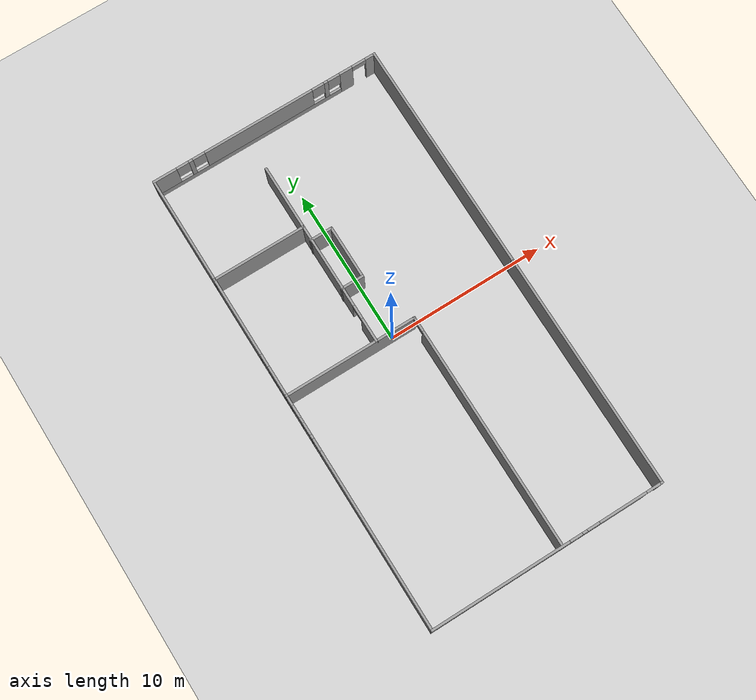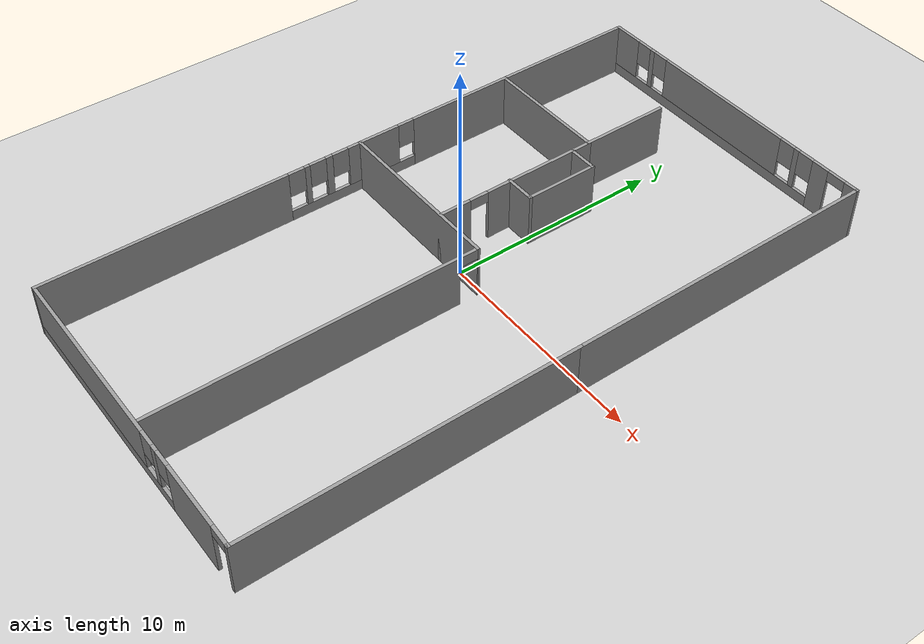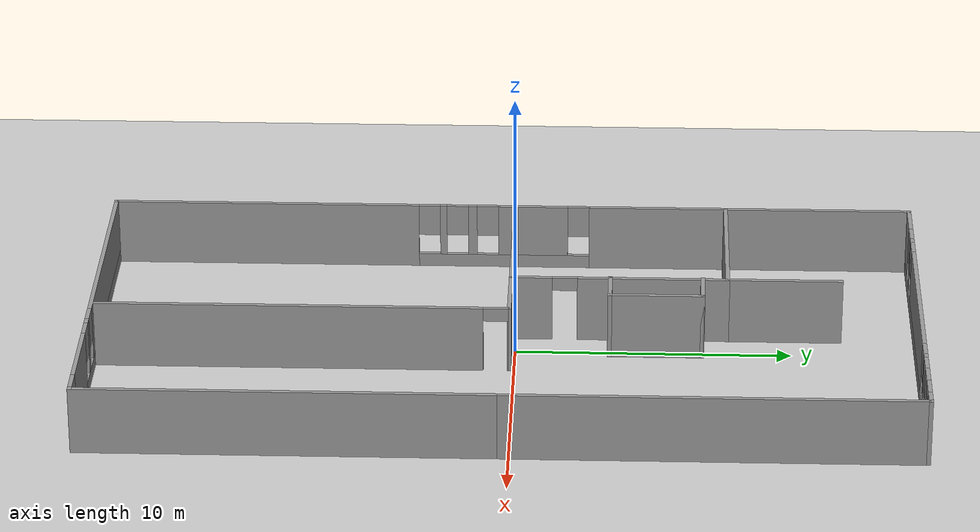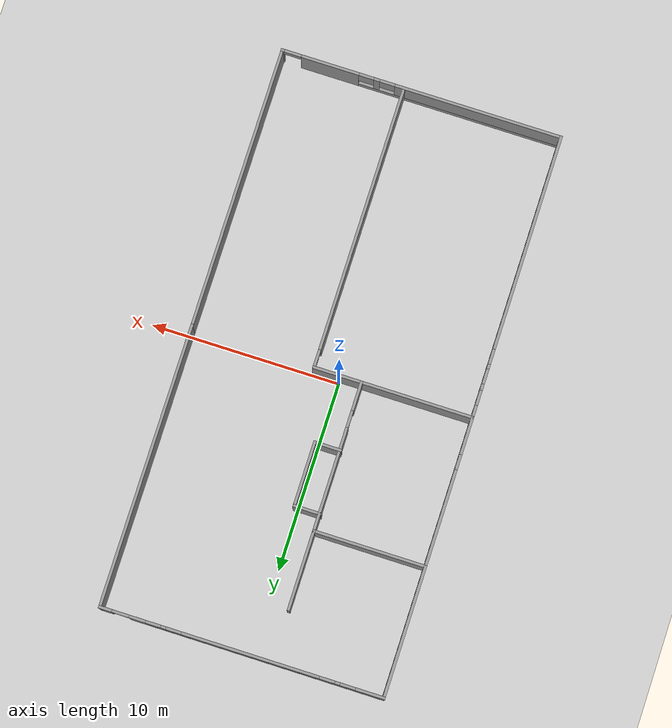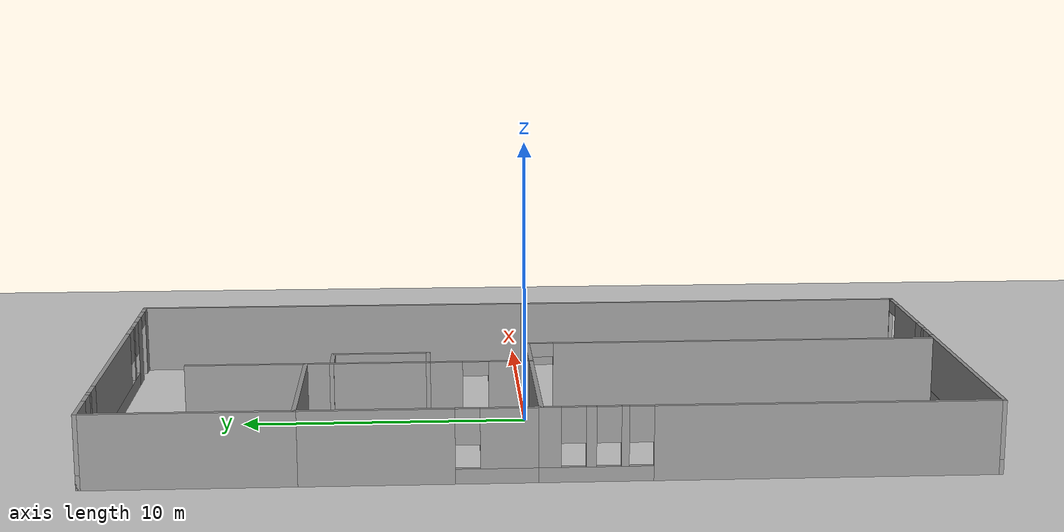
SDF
<sdf version="1.6">
 <world name="default">
  <light name="sun" type="directional">
   <pose>0 0 10 0 -0 0</pose>
   <diffuse>0.8 0.8 0.8 1</diffuse>
   <specular>0.2 0.2 0.2 1</specular>
   <attenuation>
    <range>1000</range>
    <constant>0.9</constant>
    <linear>0.01</linear>
    <quadratic>0.001</quadratic>
   </attenuation>
   <direction>-0.5 0.1 -0.9</direction>
  </light>
  <model name="ground_plane">
   <static>1</static>
   <link name="link">
    <collision name="collision">
     <geometry><plane><normal>0 0 1</normal><size>100 100</size></plane></geometry>
     <surface><friction><ode><mu>100</mu><mu2>50</mu2></ode></friction></surface>
    </collision>
    <visual name="visual">
     <cast_shadows>0</cast_shadows>
     <geometry><plane><normal>0 0 1</normal><size>100 100</size></plane></geometry>
     <material>
      <script><uri>file://media/materials/scripts/gazebo.material</uri><name>Gazebo/Grey</name></script>
     </material>
    </visual>
   </link>
  </model>
  <gravity>0 0 -9.8</gravity>
  <magnetic_field>6e-06 2.3e-05 -4.2e-05</magnetic_field>
  <atmosphere type="adiabatic"/>
  <physics name="default_physics" default="0" type="ode">
   <max_step_size>0.001</max_step_size>
   <real_time_factor>1</real_time_factor>
   <real_time_update_rate>1000</real_time_update_rate>
  </physics>
  <scene><ambient>0.4 0.4 0.4 1</ambient><background>0.7 0.7 0.7 1</background><shadows>1</shadows></scene>
  <spherical_coordinates>
   <surface_model>EARTH_WGS84</surface_model>
   <latitude_deg>0</latitude_deg>
   <longitude_deg>0</longitude_deg>
   <elevation>0</elevation>
   <heading_deg>0</heading_deg>
  </spherical_coordinates>
  <model name="myworld">
   <pose>0.44447 -0.32036 0 0 -0 0</pose>
   <link name="Wall_12">
    <collision name="Wall_12_Collision">
     <geometry><box><size>15 0.15 2.5</size></box></geometry>
     <pose>0 0 1.25 0 -0 0</pose>
    </collision>
    <visual name="Wall_12_Visual">
     <pose>0 0 1.25 0 -0 0</pose>
     <geometry><box><size>15 0.15 2.5</size></box></geometry>
     <material>
      <script><uri>file://media/materials/scripts/gazebo.material</uri><name>Gazebo/Grey</name></script>
      <ambient>1 1 1 1</ambient>
     </material>
     <meta><layer>0</layer></meta>
    </visual>
    <pose>7.425 7.425 0 0 -0 1.5708</pose>
   </link>
   <link name="Wall_14">
    <pose>0 14.85 0 0 -0 3.14159</pose>
    <visual name="Wall_14_Visual_0">
     <pose>-7.1452 0 1.25 0 -0 0</pose>
     <geometry><box><size>0.709594 0.15 2.5</size></box></geometry>
     <material>
      <script><uri>file://media/materials/scripts/gazebo.material</uri><name>Gazebo/Grey</name></script>
      <ambient>1 1 1 1</ambient>
     </material>
     <meta><layer>0</layer></meta>
    </visual>
    <collision name="Wall_14_Collision_0">
     <geometry><box><size>0.709594 0.15 2.5</size></box></geometry>
     <pose>-7.1452 0 1.25 0 -0 0</pose>
    </collision>
    <visual name="Wall_14_Visual_1">
     <pose>-5.45937 0 1.25 0 -0 0</pose>
     <geometry><box><size>0.86208 0.15 2.5</size></box></geometry>
     <material>
      <script><uri>file://media/materials/scripts/gazebo.material</uri><name>Gazebo/Grey</name></script>
      <ambient>1 1 1 1</ambient>
     </material>
     <meta><layer>0</layer></meta>
    </visual>
    <collision name="Wall_14_Collision_1">
     <geometry><box><size>0.86208 0.15 2.5</size></box></geometry>
     <pose>-5.45937 0 1.25 0 -0 0</pose>
    </collision>
    <visual name="Wall_14_Visual_2">
     <pose>1.23584 0 0.25 0 -0 0</pose>
     <geometry><box><size>12.5283 0.15 0.5</size></box></geometry>
     <material>
      <script><uri>file://media/materials/scripts/gazebo.material</uri><name>Gazebo/Grey</name></script>
      <ambient>1 1 1 1</ambient>
     </material>
     <meta><layer>0</layer></meta>
    </visual>
    <collision name="Wall_14_Collision_2">
     <geometry><box><size>12.5283 0.15 0.5</size></box></geometry>
     <pose>1.23584 0 0.25 0 -0 0</pose>
    </collision>
    <visual name="Wall_14_Visual_3">
     <pose>-4.0933 0 1.5 0 -0 0</pose>
     <geometry><box><size>0.27005 0.15 2</size></box></geometry>
     <material>
      <script><uri>file://media/materials/scripts/gazebo.material</uri><name>Gazebo/Grey</name></script>
      <ambient>1 1 1 1</ambient>
     </material>
     <meta><layer>0</layer></meta>
    </visual>
    <collision name="Wall_14_Collision_3">
     <geometry><box><size>0.27005 0.15 2</size></box></geometry>
     <pose>-4.0933 0 1.5 0 -0 0</pose>
    </collision>
    <visual name="Wall_14_Visual_4">
     <pose>0.454412 0 1.5 0 -0 0</pose>
     <geometry><box><size>7.22537 0.15 2</size></box></geometry>
     <material>
      <script><uri>file://media/materials/scripts/gazebo.material</uri><name>Gazebo/Grey</name></script>
      <ambient>1 1 1 1</ambient>
     </material>
     <meta><layer>0</layer></meta>
    </visual>
    <collision name="Wall_14_Collision_4">
     <geometry><box><size>7.22537 0.15 2</size></box></geometry>
     <pose>0.454412 0 1.5 0 -0 0</pose>
    </collision>
    <visual name="Wall_14_Visual_5">
     <pose>5.00212 0 1.5 0 -0 0</pose>
     <geometry><box><size>0.27005 0.15 2</size></box></geometry>
     <material>
      <script><uri>file://media/materials/scripts/gazebo.material</uri><name>Gazebo/Grey</name></script>
      <ambient>1 1 1 1</ambient>
     </material>
     <meta><layer>0</layer></meta>
    </visual>
    <collision name="Wall_14_Collision_5">
     <geometry><box><size>0.27005 0.15 2</size></box></geometry>
     <pose>5.00212 0 1.5 0 -0 0</pose>
    </collision>
    <visual name="Wall_14_Visual_6">
     <pose>6.71858 0 1.5 0 -0 0</pose>
     <geometry><box><size>1.56285 0.15 2</size></box></geometry>
     <material>
      <script><uri>file://media/materials/scripts/gazebo.material</uri><name>Gazebo/Grey</name></script>
      <ambient>1 1 1 1</ambient>
     </material>
     <meta><layer>0</layer></meta>
    </visual>
    <collision name="Wall_14_Collision_6">
     <geometry><box><size>1.56285 0.15 2</size></box></geometry>
     <pose>6.71858 0 1.5 0 -0 0</pose>
    </collision>
    <visual name="Wall_14_Visual_7">
     <pose>-4.62833 0 1.9 0 -0 0</pose>
     <geometry><box><size>0.8 0.15 1.2</size></box></geometry>
     <material>
      <script><uri>file://media/materials/scripts/gazebo.material</uri><name>Gazebo/Grey</name></script>
      <ambient>1 1 1 1</ambient>
     </material>
     <meta><layer>0</layer></meta>
    </visual>
    <collision name="Wall_14_Collision_7">
     <geometry><box><size>0.8 0.15 1.2</size></box></geometry>
     <pose>-4.62833 0 1.9 0 -0 0</pose>
    </collision>
    <visual name="Wall_14_Visual_8">
     <pose>-3.55828 0 1.9 0 -0 0</pose>
     <geometry><box><size>0.8 0.15 1.2</size></box></geometry>
     <material>
      <script><uri>file://media/materials/scripts/gazebo.material</uri><name>Gazebo/Grey</name></script>
      <ambient>1 1 1 1</ambient>
     </material>
     <meta><layer>0</layer></meta>
    </visual>
    <collision name="Wall_14_Collision_8">
     <geometry><box><size>0.8 0.15 1.2</size></box></geometry>
     <pose>-3.55828 0 1.9 0 -0 0</pose>
    </collision>
    <visual name="Wall_14_Visual_9">
     <pose>4.4671 0 1.9 0 -0 0</pose>
     <geometry><box><size>0.8 0.15 1.2</size></box></geometry>
     <material>
      <script><uri>file://media/materials/scripts/gazebo.material</uri><name>Gazebo/Grey</name></script>
      <ambient>1 1 1 1</ambient>
     </material>
     <meta><layer>0</layer></meta>
    </visual>
    <collision name="Wall_14_Collision_9">
     <geometry><box><size>0.8 0.15 1.2</size></box></geometry>
     <pose>4.4671 0 1.9 0 -0 0</pose>
    </collision>
    <visual name="Wall_14_Visual_10">
     <pose>5.53715 0 1.9 0 -0 0</pose>
     <geometry><box><size>0.8 0.15 1.2</size></box></geometry>
     <material>
      <script><uri>file://media/materials/scripts/gazebo.material</uri><name>Gazebo/Grey</name></script>
      <ambient>1 1 1 1</ambient>
     </material>
     <meta><layer>0</layer></meta>
    </visual>
    <collision name="Wall_14_Collision_10">
     <geometry><box><size>0.8 0.15 1.2</size></box></geometry>
     <pose>5.53715 0 1.9 0 -0 0</pose>
    </collision>
    <visual name="Wall_14_Visual_11">
     <pose>-6.34041 0 2.25 0 -0 0</pose>
     <geometry><box><size>0.9 0.15 0.5</size></box></geometry>
     <material>
      <script><uri>file://media/materials/scripts/gazebo.material</uri><name>Gazebo/Grey</name></script>
      <ambient>1 1 1 1</ambient>
     </material>
     <meta><layer>0</layer></meta>
    </visual>
    <collision name="Wall_14_Collision_11">
     <geometry><box><size>0.9 0.15 0.5</size></box></geometry>
     <pose>-6.34041 0 2.25 0 -0 0</pose>
    </collision>
   </link>
   <link name="Wall_16">
    <collision name="Wall_16_Collision">
     <geometry><box><size>7 0.15 2.5</size></box></geometry>
     <pose>0 0 1.25 0 -0 0</pose>
    </collision>
    <visual name="Wall_16_Visual">
     <pose>0 0 1.25 0 -0 0</pose>
     <geometry><box><size>7 0.15 2.5</size></box></geometry>
     <material>
      <script><uri>file://media/materials/scripts/gazebo.material</uri><name>Gazebo/Grey</name></script>
      <ambient>1 1 1 1</ambient>
     </material>
     <meta><layer>0</layer></meta>
    </visual>
    <pose>-7.425 11.425 0 0 0 -1.5708</pose>
   </link>
   <link name="Wall_18">
    <collision name="Wall_18_Collision">
     <geometry><box><size>6 0.15 2.5</size></box></geometry>
     <pose>0 0 1.25 0 -0 0</pose>
    </collision>
    <visual name="Wall_18_Visual">
     <pose>0 0 1.25 0 -0 0</pose>
     <geometry><box><size>6 0.15 2.5</size></box></geometry>
     <material>
      <script><uri>file://media/materials/scripts/gazebo.material</uri><name>Gazebo/Grey</name></script>
      <ambient>1 1 1 1</ambient>
     </material>
     <meta><layer>0</layer></meta>
    </visual>
    <pose>-4.5 8 0 0 -0 0</pose>
   </link>
   <link name="Wall_21">
    <collision name="Wall_21_Collision">
     <geometry><box><size>4.25 0.15 2.5</size></box></geometry>
     <pose>0 0 1.25 0 -0 0</pose>
    </collision>
    <visual name="Wall_21_Visual">
     <pose>0 0 1.25 0 -0 0</pose>
     <geometry><box><size>4.25 0.15 2.5</size></box></geometry>
     <material>
      <script><uri>file://media/materials/scripts/gazebo.material</uri><name>Gazebo/Grey</name></script>
      <ambient>1 1 1 1</ambient>
     </material>
     <meta><layer>0</layer></meta>
    </visual>
    <pose>-1.575 10.05 0 0 -0 1.5708</pose>
   </link>
   <link name="Wall_23">
    <pose>-7.425 4.075 0 0 0 -1.5708</pose>
    <visual name="Wall_23_Visual_0">
     <pose>-1.41347 0 1.25 0 -0 0</pose>
     <geometry><box><size>5.17307 0.15 2.5</size></box></geometry>
     <material>
      <script><uri>file://media/materials/scripts/gazebo.material</uri><name>Gazebo/Grey</name></script>
      <ambient>1 1 1 1</ambient>
     </material>
     <meta><layer>0</layer></meta>
    </visual>
    <collision name="Wall_23_Collision_0">
     <geometry><box><size>5.17307 0.15 2.5</size></box></geometry>
     <pose>-1.41347 0 1.25 0 -0 0</pose>
    </collision>
    <visual name="Wall_23_Visual_1">
     <pose>2.58653 0 0.25 0 -0 0</pose>
     <geometry><box><size>2.82693 0.15 0.5</size></box></geometry>
     <material>
      <script><uri>file://media/materials/scripts/gazebo.material</uri><name>Gazebo/Grey</name></script>
      <ambient>1 1 1 1</ambient>
     </material>
     <meta><layer>0</layer></meta>
    </visual>
    <collision name="Wall_23_Collision_1">
     <geometry><box><size>2.82693 0.15 0.5</size></box></geometry>
     <pose>2.58653 0 0.25 0 -0 0</pose>
    </collision>
    <visual name="Wall_23_Visual_2">
     <pose>2.98653 0 1.5 0 -0 0</pose>
     <geometry><box><size>2.02693 0.15 2</size></box></geometry>
     <material>
      <script><uri>file://media/materials/scripts/gazebo.material</uri><name>Gazebo/Grey</name></script>
      <ambient>1 1 1 1</ambient>
     </material>
     <meta><layer>0</layer></meta>
    </visual>
    <collision name="Wall_23_Collision_2">
     <geometry><box><size>2.02693 0.15 2</size></box></geometry>
     <pose>2.98653 0 1.5 0 -0 0</pose>
    </collision>
    <visual name="Wall_23_Visual_3">
     <pose>1.57307 0 1.9 0 -0 0</pose>
     <geometry><box><size>0.8 0.15 1.2</size></box></geometry>
     <material>
      <script><uri>file://media/materials/scripts/gazebo.material</uri><name>Gazebo/Grey</name></script>
      <ambient>1 1 1 1</ambient>
     </material>
     <meta><layer>0</layer></meta>
    </visual>
    <collision name="Wall_23_Collision_3">
     <geometry><box><size>0.8 0.15 1.2</size></box></geometry>
     <pose>1.57307 0 1.9 0 -0 0</pose>
    </collision>
   </link>
   <link name="Wall_25">
    <collision name="Wall_25_Collision">
     <geometry><box><size>8.5 0.15 2.5</size></box></geometry>
     <pose>0 0 1.25 0 -0 0</pose>
    </collision>
    <visual name="Wall_25_Visual">
     <pose>0 0 1.25 0 -0 0</pose>
     <geometry><box><size>8.5 0.15 2.5</size></box></geometry>
     <material>
      <script><uri>file://media/materials/scripts/gazebo.material</uri><name>Gazebo/Grey</name></script>
      <ambient>1 1 1 1</ambient>
     </material>
     <meta><layer>0</layer></meta>
    </visual>
    <pose>-3.25 0.15 0 0 -0 0</pose>
   </link>
   <link name="Wall_28">
    <pose>0 -14.85 0 0 -0 3.14159</pose>
    <visual name="Wall_28_Visual_0">
     <pose>-7.40397 0 1.25 0 -0 0</pose>
     <geometry><box><size>0.192056 0.15 2.5</size></box></geometry>
     <material>
      <script><uri>file://media/materials/scripts/gazebo.material</uri><name>Gazebo/Grey</name></script>
      <ambient>1 1 1 1</ambient>
     </material>
     <meta><layer>0</layer></meta>
    </visual>
    <collision name="Wall_28_Collision_0">
     <geometry><box><size>0.192056 0.15 2.5</size></box></geometry>
     <pose>-7.40397 0 1.25 0 -0 0</pose>
    </collision>
    <visual name="Wall_28_Visual_1">
     <pose>-4.86453 0 1.25 0 -0 0</pose>
     <geometry><box><size>3.08683 0.15 2.5</size></box></geometry>
     <material>
      <script><uri>file://media/materials/scripts/gazebo.material</uri><name>Gazebo/Grey</name></script>
      <ambient>1 1 1 1</ambient>
     </material>
     <meta><layer>0</layer></meta>
    </visual>
    <collision name="Wall_28_Collision_1">
     <geometry><box><size>3.08683 0.15 2.5</size></box></geometry>
     <pose>-4.86453 0 1.25 0 -0 0</pose>
    </collision>
    <visual name="Wall_28_Visual_2">
     <pose>2.08944 0 0.25 0 -0 0</pose>
     <geometry><box><size>10.8211 0.15 0.5</size></box></geometry>
     <material>
      <script><uri>file://media/materials/scripts/gazebo.material</uri><name>Gazebo/Grey</name></script>
      <ambient>1 1 1 1</ambient>
     </material>
     <meta><layer>0</layer></meta>
    </visual>
    <collision name="Wall_28_Collision_2">
     <geometry><box><size>10.8211 0.15 0.5</size></box></geometry>
     <pose>2.08944 0 0.25 0 -0 0</pose>
    </collision>
    <visual name="Wall_28_Visual_3">
     <pose>-2.36251 0 1.5 0 -0 0</pose>
     <geometry><box><size>0.317208 0.15 2</size></box></geometry>
     <material>
      <script><uri>file://media/materials/scripts/gazebo.material</uri><name>Gazebo/Grey</name></script>
      <ambient>1 1 1 1</ambient>
     </material>
     <meta><layer>0</layer></meta>
    </visual>
    <collision name="Wall_28_Collision_3">
     <geometry><box><size>0.317208 0.15 2</size></box></geometry>
     <pose>-2.36251 0 1.5 0 -0 0</pose>
    </collision>
    <visual name="Wall_28_Visual_4">
     <pose>3.04805 0 1.5 0 -0 0</pose>
     <geometry><box><size>8.90391 0.15 2</size></box></geometry>
     <material>
      <script><uri>file://media/materials/scripts/gazebo.material</uri><name>Gazebo/Grey</name></script>
      <ambient>1 1 1 1</ambient>
     </material>
     <meta><layer>0</layer></meta>
    </visual>
    <collision name="Wall_28_Collision_4">
     <geometry><box><size>8.90391 0.15 2</size></box></geometry>
     <pose>3.04805 0 1.5 0 -0 0</pose>
    </collision>
    <visual name="Wall_28_Visual_5">
     <pose>-2.92111 0 1.9 0 -0 0</pose>
     <geometry><box><size>0.8 0.15 1.2</size></box></geometry>
     <material>
      <script><uri>file://media/materials/scripts/gazebo.material</uri><name>Gazebo/Grey</name></script>
      <ambient>1 1 1 1</ambient>
     </material>
     <meta><layer>0</layer></meta>
    </visual>
    <collision name="Wall_28_Collision_5">
     <geometry><box><size>0.8 0.15 1.2</size></box></geometry>
     <pose>-2.92111 0 1.9 0 -0 0</pose>
    </collision>
    <visual name="Wall_28_Visual_6">
     <pose>-1.80391 0 1.9 0 -0 0</pose>
     <geometry><box><size>0.8 0.15 1.2</size></box></geometry>
     <material>
      <script><uri>file://media/materials/scripts/gazebo.material</uri><name>Gazebo/Grey</name></script>
      <ambient>1 1 1 1</ambient>
     </material>
     <meta><layer>0</layer></meta>
    </visual>
    <collision name="Wall_28_Collision_6">
     <geometry><box><size>0.8 0.15 1.2</size></box></geometry>
     <pose>-1.80391 0 1.9 0 -0 0</pose>
    </collision>
    <visual name="Wall_28_Visual_7">
     <pose>-6.85794 0 2.25 0 -0 0</pose>
     <geometry><box><size>0.9 0.15 0.5</size></box></geometry>
     <material>
      <script><uri>file://media/materials/scripts/gazebo.material</uri><name>Gazebo/Grey</name></script>
      <ambient>1 1 1 1</ambient>
     </material>
     <meta><layer>0</layer></meta>
    </visual>
    <collision name="Wall_28_Collision_7">
     <geometry><box><size>0.9 0.15 0.5</size></box></geometry>
     <pose>-6.85794 0 2.25 0 -0 0</pose>
    </collision>
   </link>
   <link name="Wall_30">
    <pose>-7.425 -7.35 0 0 -0 1.5708</pose>
    <visual name="Wall_30_Visual_0">
     <pose>-1.85297 0 1.25 0 -0 0</pose>
     <geometry><box><size>11.4441 0.15 2.5</size></box></geometry>
     <material>
      <script><uri>file://media/materials/scripts/gazebo.material</uri><name>Gazebo/Grey</name></script>
      <ambient>1 1 1 1</ambient>
     </material>
     <meta><layer>0</layer></meta>
    </visual>
    <collision name="Wall_30_Collision_0">
     <geometry><box><size>11.4441 0.15 2.5</size></box></geometry>
     <pose>-1.85297 0 1.25 0 -0 0</pose>
    </collision>
    <visual name="Wall_30_Visual_1">
     <pose>5.72203 0 0.25 0 -0 0</pose>
     <geometry><box><size>3.70594 0.15 0.5</size></box></geometry>
     <material>
      <script><uri>file://media/materials/scripts/gazebo.material</uri><name>Gazebo/Grey</name></script>
      <ambient>1 1 1 1</ambient>
     </material>
     <meta><layer>0</layer></meta>
    </visual>
    <collision name="Wall_30_Collision_1">
     <geometry><box><size>3.70594 0.15 0.5</size></box></geometry>
     <pose>5.72203 0 0.25 0 -0 0</pose>
    </collision>
    <visual name="Wall_30_Visual_2">
     <pose>4.79499 0 1.5 0 -0 0</pose>
     <geometry><box><size>0.251845 0.15 2</size></box></geometry>
     <material>
      <script><uri>file://media/materials/scripts/gazebo.material</uri><name>Gazebo/Grey</name></script>
      <ambient>1 1 1 1</ambient>
     </material>
     <meta><layer>0</layer></meta>
    </visual>
    <collision name="Wall_30_Collision_2">
     <geometry><box><size>0.251845 0.15 2</size></box></geometry>
     <pose>4.79499 0 1.5 0 -0 0</pose>
    </collision>
    <visual name="Wall_30_Visual_3">
     <pose>5.88729 0 1.5 0 -0 0</pose>
     <geometry><box><size>0.332756 0.15 2</size></box></geometry>
     <material>
      <script><uri>file://media/materials/scripts/gazebo.material</uri><name>Gazebo/Grey</name></script>
      <ambient>1 1 1 1</ambient>
     </material>
     <meta><layer>0</layer></meta>
    </visual>
    <collision name="Wall_30_Collision_3">
     <geometry><box><size>0.332756 0.15 2</size></box></geometry>
     <pose>5.88729 0 1.5 0 -0 0</pose>
    </collision>
    <visual name="Wall_30_Visual_4">
     <pose>7.21433 0 1.5 0 -0 0</pose>
     <geometry><box><size>0.721335 0.15 2</size></box></geometry>
     <material>
      <script><uri>file://media/materials/scripts/gazebo.material</uri><name>Gazebo/Grey</name></script>
      <ambient>1 1 1 1</ambient>
     </material>
     <meta><layer>0</layer></meta>
    </visual>
    <collision name="Wall_30_Collision_4">
     <geometry><box><size>0.721335 0.15 2</size></box></geometry>
     <pose>7.21433 0 1.5 0 -0 0</pose>
    </collision>
    <visual name="Wall_30_Visual_5">
     <pose>4.26906 0 1.9 0 -0 0</pose>
     <geometry><box><size>0.8 0.15 1.2</size></box></geometry>
     <material>
      <script><uri>file://media/materials/scripts/gazebo.material</uri><name>Gazebo/Grey</name></script>
      <ambient>1 1 1 1</ambient>
     </material>
     <meta><layer>0</layer></meta>
    </visual>
    <collision name="Wall_30_Collision_5">
     <geometry><box><size>0.8 0.15 1.2</size></box></geometry>
     <pose>4.26906 0 1.9 0 -0 0</pose>
    </collision>
    <visual name="Wall_30_Visual_6">
     <pose>5.32091 0 1.9 0 -0 0</pose>
     <geometry><box><size>0.8 0.15 1.2</size></box></geometry>
     <material>
      <script><uri>file://media/materials/scripts/gazebo.material</uri><name>Gazebo/Grey</name></script>
      <ambient>1 1 1 1</ambient>
     </material>
     <meta><layer>0</layer></meta>
    </visual>
    <collision name="Wall_30_Collision_6">
     <geometry><box><size>0.8 0.15 1.2</size></box></geometry>
     <pose>5.32091 0 1.9 0 -0 0</pose>
    </collision>
    <visual name="Wall_30_Visual_7">
     <pose>6.45366 0 1.9 0 -0 0</pose>
     <geometry><box><size>0.8 0.15 1.2</size></box></geometry>
     <material>
      <script><uri>file://media/materials/scripts/gazebo.material</uri><name>Gazebo/Grey</name></script>
      <ambient>1 1 1 1</ambient>
     </material>
     <meta><layer>0</layer></meta>
    </visual>
    <collision name="Wall_30_Collision_7">
     <geometry><box><size>0.8 0.15 1.2</size></box></geometry>
     <pose>6.45366 0 1.9 0 -0 0</pose>
    </collision>
   </link>
   <link name="Wall_33">
    <pose>0.925 -7.275 0 0 0 -1.5708</pose>
    <visual name="Wall_33_Visual_0">
     <pose>-7.44752 0 1.25 0 -0 0</pose>
     <geometry><box><size>0.104957 0.15 2.5</size></box></geometry>
     <material>
      <script><uri>file://media/materials/scripts/gazebo.material</uri><name>Gazebo/Grey</name></script>
      <ambient>1 1 1 1</ambient>
     </material>
     <meta><layer>0</layer></meta>
    </visual>
    <collision name="Wall_33_Collision_0">
     <geometry><box><size>0.104957 0.15 2.5</size></box></geometry>
     <pose>-7.44752 0 1.25 0 -0 0</pose>
    </collision>
    <visual name="Wall_33_Visual_1">
     <pose>0.502479 0 1.25 0 -0 0</pose>
     <geometry><box><size>13.995 0.15 2.5</size></box></geometry>
     <material>
      <script><uri>file://media/materials/scripts/gazebo.material</uri><name>Gazebo/Grey</name></script>
      <ambient>1 1 1 1</ambient>
     </material>
     <meta><layer>0</layer></meta>
    </visual>
    <collision name="Wall_33_Collision_1">
     <geometry><box><size>13.995 0.15 2.5</size></box></geometry>
     <pose>0.502479 0 1.25 0 -0 0</pose>
    </collision>
    <visual name="Wall_33_Visual_2">
     <pose>-6.94504 0 2.25 0 -0 0</pose>
     <geometry><box><size>0.9 0.15 0.5</size></box></geometry>
     <material>
      <script><uri>file://media/materials/scripts/gazebo.material</uri><name>Gazebo/Grey</name></script>
      <ambient>1 1 1 1</ambient>
     </material>
     <meta><layer>0</layer></meta>
    </visual>
    <collision name="Wall_33_Collision_2">
     <geometry><box><size>0.9 0.15 0.5</size></box></geometry>
     <pose>-6.94504 0 2.25 0 -0 0</pose>
    </collision>
   </link>
   <link name="Wall_36">
    <pose>-1.575 4.075 0 0 0 -1.5708</pose>
    <visual name="Wall_36_Visual_0">
     <pose>-1.23619 0 1.25 0 -0 0</pose>
     <geometry><box><size>5.52762 0.15 2.5</size></box></geometry>
     <material>
      <script><uri>file://media/materials/scripts/gazebo.material</uri><name>Gazebo/Grey</name></script>
      <ambient>1 1 1 1</ambient>
     </material>
     <meta><layer>0</layer></meta>
    </visual>
    <collision name="Wall_36_Collision_0">
     <geometry><box><size>5.52762 0.15 2.5</size></box></geometry>
     <pose>-1.23619 0 1.25 0 -0 0</pose>
    </collision>
    <visual name="Wall_36_Visual_1">
     <pose>3.21381 0 1.25 0 -0 0</pose>
     <geometry><box><size>1.57238 0.15 2.5</size></box></geometry>
     <material>
      <script><uri>file://media/materials/scripts/gazebo.material</uri><name>Gazebo/Grey</name></script>
      <ambient>1 1 1 1</ambient>
     </material>
     <meta><layer>0</layer></meta>
    </visual>
    <collision name="Wall_36_Collision_1">
     <geometry><box><size>1.57238 0.15 2.5</size></box></geometry>
     <pose>3.21381 0 1.25 0 -0 0</pose>
    </collision>
    <visual name="Wall_36_Visual_2">
     <pose>1.97762 0 2.25 0 -0 0</pose>
     <geometry><box><size>0.9 0.15 0.5</size></box></geometry>
     <material>
      <script><uri>file://media/materials/scripts/gazebo.material</uri><name>Gazebo/Grey</name></script>
      <ambient>1 1 1 1</ambient>
     </material>
     <meta><layer>0</layer></meta>
    </visual>
    <collision name="Wall_36_Collision_2">
     <geometry><box><size>0.9 0.15 0.5</size></box></geometry>
     <pose>1.97762 0 2.25 0 -0 0</pose>
    </collision>
   </link>
   <link name="Wall_38">
    <collision name="Wall_38_Collision">
     <geometry><box><size>1.5 0.15 2.5</size></box></geometry>
     <pose>0 0 1.25 0 -0 0</pose>
    </collision>
    <visual name="Wall_38_Visual">
     <pose>0 0 1.25 0 -0 0</pose>
     <geometry><box><size>1.5 0.15 2.5</size></box></geometry>
     <material>
      <script><uri>file://media/materials/scripts/gazebo.material</uri><name>Gazebo/Grey</name></script>
      <ambient>1 1 1 1</ambient>
     </material>
     <meta><layer>0</layer></meta>
    </visual>
    <pose>-0.939357 7.0924 0 0 -0 0</pose>
   </link>
   <link name="Wall_42">
    <collision name="Wall_42_Collision">
     <geometry><box><size>3.5 0.15 2.5</size></box></geometry>
     <pose>0 0 1.25 0 -0 0</pose>
    </collision>
    <visual name="Wall_42_Visual">
     <pose>0 0 1.25 0 -0 0</pose>
     <geometry><box><size>3.5 0.15 2.5</size></box></geometry>
     <material>
      <script><uri>file://media/materials/scripts/gazebo.material</uri><name>Gazebo/Grey</name></script>
      <ambient>1 1 1 1</ambient>
     </material>
     <meta><layer>0</layer></meta>
    </visual>
    <pose>-0.264357 5.4174 0 0 0 -1.5708</pose>
   </link>
   <link name="Wall_45">
    <collision name="Wall_45_Collision">
     <geometry><box><size>1.5 0.15 2.5</size></box></geometry>
     <pose>0 0 1.25 0 -0 0</pose>
    </collision>
    <visual name="Wall_45_Visual">
     <pose>0 0 1.25 0 -0 0</pose>
     <geometry><box><size>1.5 0.15 2.5</size></box></geometry>
     <material>
      <script><uri>file://media/materials/scripts/gazebo.material</uri><name>Gazebo/Grey</name></script>
      <ambient>1 1 1 1</ambient>
     </material>
     <meta><layer>0</layer></meta>
    </visual>
    <pose>-0.939357 3.7424 0 0 -0 3.14159</pose>
   </link>
   <link name="Wall_8">
    <collision name="Wall_8_Collision">
     <geometry><box><size>15 0.15 2.5</size></box></geometry>
     <pose>0 0 1.25 0 -0 0</pose>
    </collision>
    <visual name="Wall_8_Visual">
     <pose>0 0 1.25 0 -0 0</pose>
     <geometry><box><size>15 0.15 2.5</size></box></geometry>
     <material>
      <script><uri>file://media/materials/scripts/gazebo.material</uri><name>Gazebo/Grey</name></script>
      <ambient>1 1 1 1</ambient>
     </material>
     <meta><layer>0</layer></meta>
    </visual>
    <pose>7.425 -7.425 0 0 -0 1.5708</pose>
   </link>
   <static>1</static>
  </model>
 </world>
</sdf>
